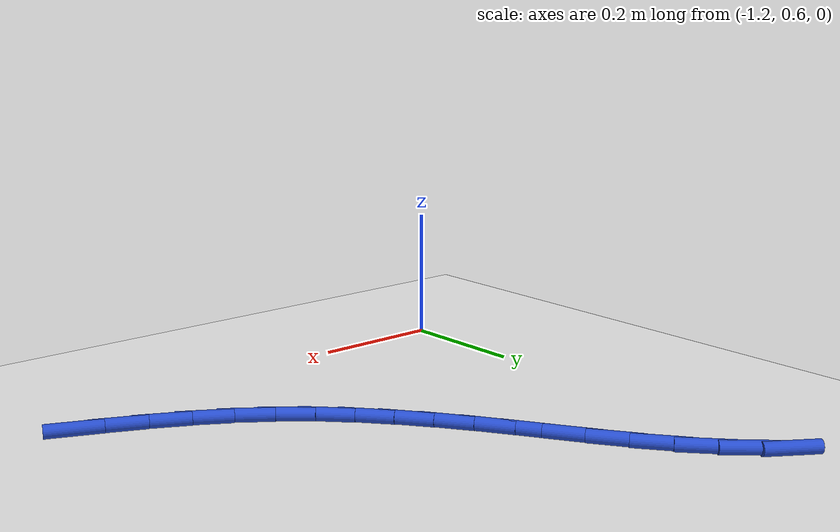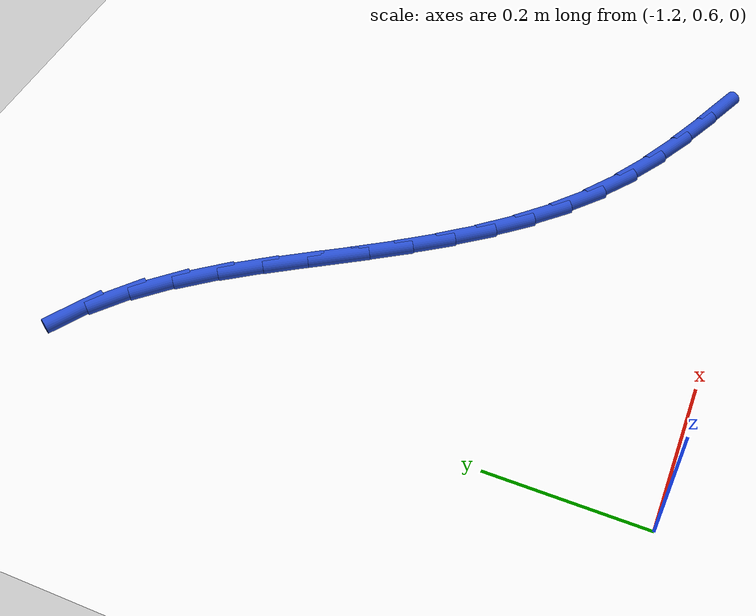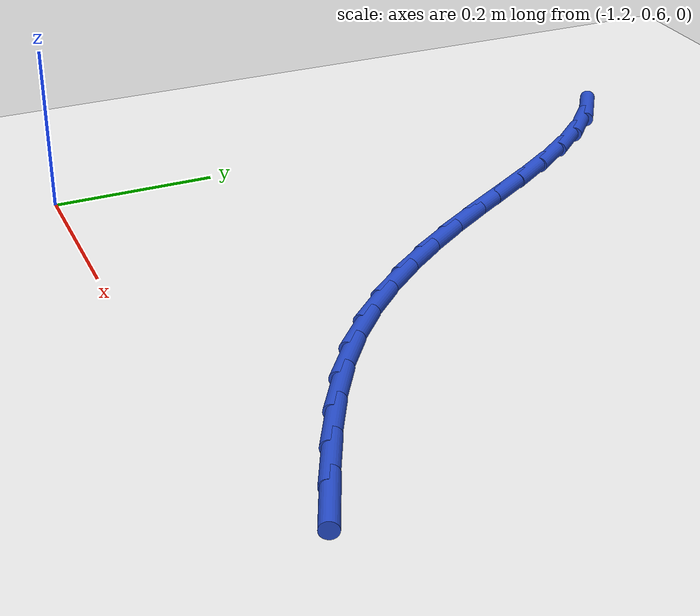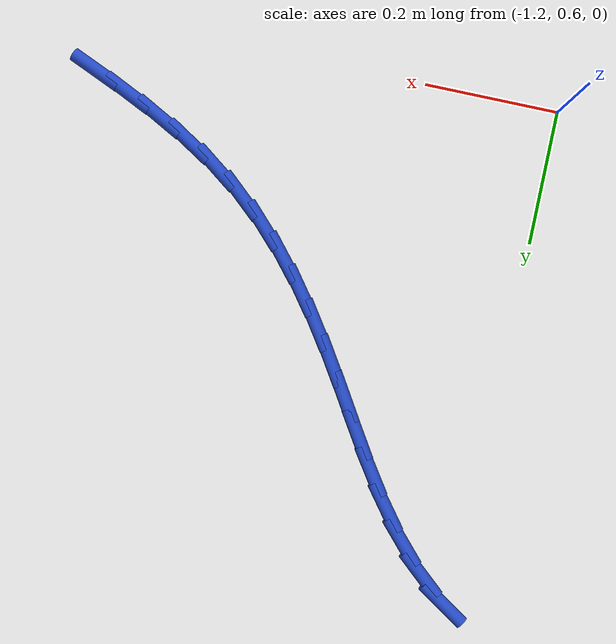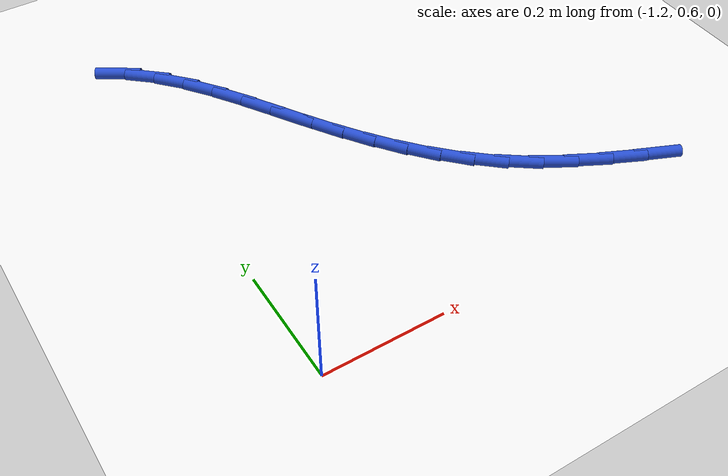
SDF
<sdf version="1.6">
 <world name="default">
  <model name="ground_plane">
   <static>1</static>
   <link name="link">
    <collision name="collision">
     <geometry><plane><normal>0 0 1</normal><size>100 100</size></plane></geometry>
     <surface><friction><ode><mu>100</mu><mu2>50</mu2></ode></friction></surface>
    </collision>
    <visual name="visual">
     <cast_shadows>0</cast_shadows>
     <geometry><plane><normal>0 0 1</normal><size>100 100</size></plane></geometry>
     <material>
      <script><uri>file://media/materials/scripts/gazebo.material</uri><name>Gazebo/WhiteGlow</name></script>
     </material>
    </visual>
   </link>
  </model>
  <model name="line">
   <link name="link_17">
    <pose>-0.5196748055038544 0.6823572049416239 0.01 0 1.57 -0.40885184260643354</pose>
    <collision name="collision">
     <geometry><cylinder><radius>0.01</radius><length>0.08</length></cylinder></geometry>
    </collision>
    <visual name="visual">
     <material>
      <script><name>Gazebo/Blue</name><uri>file://media/materials/scripts/gazebo.material</uri></script>
     </material>
     <geometry><cylinder><radius>0.01</radius><length>0.08</length></cylinder></geometry>
    </visual>
   </link>
   <link name="link_18">
    <pose>-0.573164256357489 0.7055324100515323 0.01 0 1.57 -0.44069857170927607</pose>
    <collision name="collision">
     <geometry><cylinder><radius>0.01</radius><length>0.08</length></cylinder></geometry>
    </collision>
    <visual name="visual">
     <material>
      <script><name>Gazebo/Blue</name><uri>file://media/materials/scripts/gazebo.material</uri></script>
     </material>
     <geometry><cylinder><radius>0.01</radius><length>0.08</length></cylinder></geometry>
    </visual>
   </link>
   <link name="link_19">
    <pose>-0.6254128649500923 0.7301746411494137 0.01 0 1.57 -0.4888811779173968</pose>
    <collision name="collision">
     <geometry><cylinder><radius>0.01</radius><length>0.08</length></cylinder></geometry>
    </collision>
    <visual name="visual">
     <material>
      <script><name>Gazebo/Blue</name><uri>file://media/materials/scripts/gazebo.material</uri></script>
     </material>
     <geometry><cylinder><radius>0.01</radius><length>0.08</length></cylinder></geometry>
    </visual>
   </link>
   <link name="link_20">
    <pose>-0.6757219351329034 0.7569366452585979 0.01 0 1.57 -0.5546714894485142</pose>
    <collision name="collision">
     <geometry><cylinder><radius>0.01</radius><length>0.08</length></cylinder></geometry>
    </collision>
    <visual name="visual">
     <material>
      <script><name>Gazebo/Blue</name><uri>file://media/materials/scripts/gazebo.material</uri></script>
     </material>
     <geometry><cylinder><radius>0.01</radius><length>0.08</length></cylinder></geometry>
    </visual>
   </link>
   <link name="link_21">
    <pose>-0.7233927707571608 0.7864711694024156 0.01 0 1.57 -0.6387427131420124</pose>
    <collision name="collision">
     <geometry><cylinder><radius>0.01</radius><length>0.08</length></cylinder></geometry>
    </collision>
    <visual name="visual">
     <material>
      <script><name>Gazebo/Blue</name><uri>file://media/materials/scripts/gazebo.material</uri></script>
     </material>
     <geometry><cylinder><radius>0.01</radius><length>0.08</length></cylinder></geometry>
    </visual>
   </link>
   <link name="link_22">
    <pose>-0.7677500149901675 0.8194104770849994 0.01 0 1.57 -0.7281159391969414</pose>
    <collision name="collision">
     <geometry><cylinder><radius>0.01</radius><length>0.08</length></cylinder></geometry>
    </collision>
    <visual name="visual">
     <material>
      <script><name>Gazebo/Blue</name><uri>file://media/materials/scripts/gazebo.material</uri></script>
     </material>
     <geometry><cylinder><radius>0.01</radius><length>0.08</length></cylinder></geometry>
    </visual>
   </link>
   <link name="link_23">
    <pose>-0.8086760847177507 0.8558973072400081 0.01 0 1.57 -0.8076830214042869</pose>
    <collision name="collision">
     <geometry><cylinder><radius>0.01</radius><length>0.08</length></cylinder></geometry>
    </collision>
    <visual name="visual">
     <material>
      <script><name>Gazebo/Blue</name><uri>file://media/materials/scripts/gazebo.material</uri></script>
     </material>
     <geometry><cylinder><radius>0.01</radius><length>0.08</length></cylinder></geometry>
    </visual>
   </link>
   <link name="link_24">
    <pose>-0.8466230751127204 0.8955744263042222 0.01 0 1.57 -0.8755111262053662</pose>
    <collision name="collision">
     <geometry><cylinder><radius>0.01</radius><length>0.08</length></cylinder></geometry>
    </collision>
    <visual name="visual">
     <material>
      <script><name>Gazebo/Blue</name><uri>file://media/materials/scripts/gazebo.material</uri></script>
     </material>
     <geometry><cylinder><radius>0.01</radius><length>0.08</length></cylinder></geometry>
    </visual>
   </link>
   <link name="link_25">
    <pose>-0.8820688019105202 0.938062027317797 0.01 0 1.57 -0.9311021314186065</pose>
    <collision name="collision">
     <geometry><cylinder><radius>0.01</radius><length>0.08</length></cylinder></geometry>
    </collision>
    <visual name="visual">
     <material>
      <script><name>Gazebo/Blue</name><uri>file://media/materials/scripts/gazebo.material</uri></script>
     </material>
     <geometry><cylinder><radius>0.01</radius><length>0.08</length></cylinder></geometry>
    </visual>
   </link>
   <link name="link_26">
    <pose>-0.9154910808465938 0.9829803033208877 0.01 0 1.57 -0.9745282691185173</pose>
    <collision name="collision">
     <geometry><cylinder><radius>0.01</radius><length>0.08</length></cylinder></geometry>
    </collision>
    <visual name="visual">
     <material>
      <script><name>Gazebo/Blue</name><uri>file://media/materials/scripts/gazebo.material</uri></script>
     </material>
     <geometry><cylinder><radius>0.01</radius><length>0.08</length></cylinder></geometry>
    </visual>
   </link>
   <link name="link_27">
    <pose>-0.9473677276563846 1.0299494473536488 0.01 0 1.57 -1.0057101286934689</pose>
    <collision name="collision">
     <geometry><cylinder><radius>0.01</radius><length>0.08</length></cylinder></geometry>
    </collision>
    <visual name="visual">
     <material>
      <script><name>Gazebo/Blue</name><uri>file://media/materials/scripts/gazebo.material</uri></script>
     </material>
     <geometry><cylinder><radius>0.01</radius><length>0.08</length></cylinder></geometry>
    </visual>
   </link>
   <link name="link_28">
    <pose>-0.9781893022507785 1.078559496578281 0.01 0 1.57 -1.0185991414400046</pose>
    <collision name="collision">
     <geometry><cylinder><radius>0.01</radius><length>0.08</length></cylinder></geometry>
    </collision>
    <visual name="visual">
     <material>
      <script><name>Gazebo/Blue</name><uri>file://media/materials/scripts/gazebo.material</uri></script>
     </material>
     <geometry><cylinder><radius>0.01</radius><length>0.08</length></cylinder></geometry>
    </visual>
   </link>
   <link name="link_29">
    <pose>-1.0086300918626143 1.1279657437733064 0.01 0 1.57 -1.0088647498278904</pose>
    <collision name="collision">
     <geometry><cylinder><radius>0.01</radius><length>0.08</length></cylinder></geometry>
    </collision>
    <visual name="visual">
     <material>
      <script><name>Gazebo/Blue</name><uri>file://media/materials/scripts/gazebo.material</uri></script>
     </material>
     <geometry><cylinder><radius>0.01</radius><length>0.08</length></cylinder></geometry>
    </visual>
   </link>
   <link name="link_30">
    <pose>-1.0395023385221558 1.1769970464721076 0.01 0 1.57 -0.9760036157077159</pose>
    <collision name="collision">
     <geometry><cylinder><radius>0.01</radius><length>0.08</length></cylinder></geometry>
    </collision>
    <visual name="visual">
     <material>
      <script><name>Gazebo/Blue</name><uri>file://media/materials/scripts/gazebo.material</uri></script>
     </material>
     <geometry><cylinder><radius>0.01</radius><length>0.08</length></cylinder></geometry>
    </visual>
   </link>
   <link name="link_31">
    <pose>-1.0716216376843974 1.224474327173948 0.01 0 1.57 -0.9184320580696458</pose>
    <collision name="collision">
     <geometry><cylinder><radius>0.01</radius><length>0.08</length></cylinder></geometry>
    </collision>
    <visual name="visual">
     <material>
      <script><name>Gazebo/Blue</name><uri>file://media/materials/scripts/gazebo.material</uri></script>
     </material>
     <geometry><cylinder><radius>0.01</radius><length>0.08</length></cylinder></geometry>
    </visual>
   </link>
   <link name="link_32">
    <pose>-1.1058035848043337 1.269218508378093 0.01 0 1.57 -0.8337838807462441</pose>
    <collision name="collision">
     <geometry><cylinder><radius>0.01</radius><length>0.08</length></cylinder></geometry>
    </collision>
    <visual name="visual">
     <material>
      <script><name>Gazebo/Blue</name><uri>file://media/materials/scripts/gazebo.material</uri></script>
     </material>
     <geometry><cylinder><radius>0.01</radius><length>0.08</length></cylinder></geometry>
    </visual>
   </link>
   <link name="link_33">
    <pose>-1.1428637753369593 1.310050512583806 0.01 0 1.57 -0.7199542133017709</pose>
    <collision name="collision">
     <geometry><cylinder><radius>0.01</radius><length>0.08</length></cylinder></geometry>
    </collision>
    <visual name="visual">
     <material>
      <script><name>Gazebo/Blue</name><uri>file://media/materials/scripts/gazebo.material</uri></script>
     </material>
     <geometry><cylinder><radius>0.01</radius><length>0.08</length></cylinder></geometry>
    </visual>
   </link>
   <link name="link_34">
    <pose>-1.1836178047372685 1.3457912622903516 0.01 0 1.57 -0.5771384441373236</pose>
    <collision name="collision">
     <geometry><cylinder><radius>0.01</radius><length>0.08</length></cylinder></geometry>
    </collision>
    <visual name="visual">
     <material>
      <script><name>Gazebo/Blue</name><uri>file://media/materials/scripts/gazebo.material</uri></script>
     </material>
     <geometry><cylinder><radius>0.01</radius><length>0.08</length></cylinder></geometry>
    </visual>
   </link>
  </model>
 </world>
</sdf>
